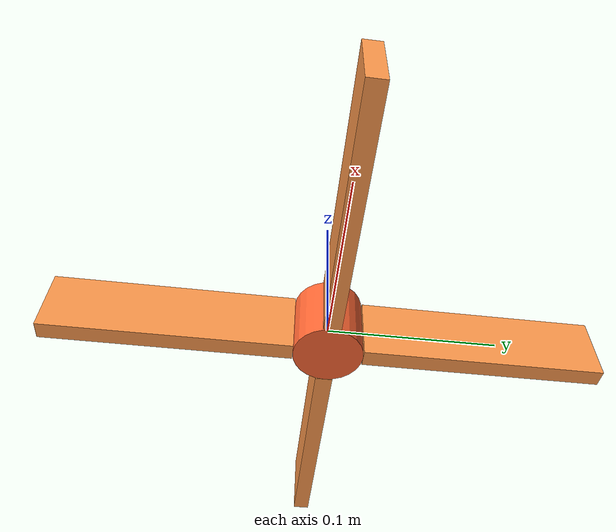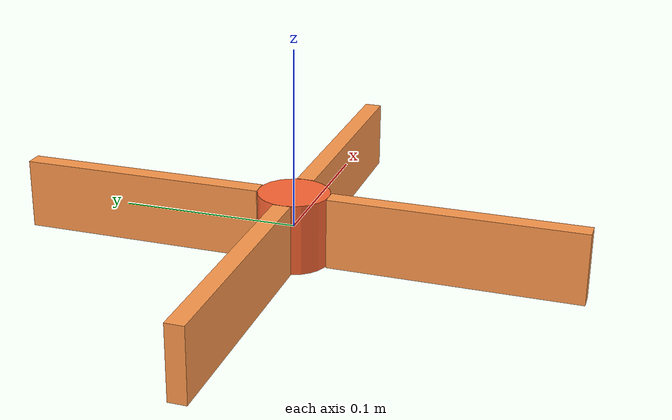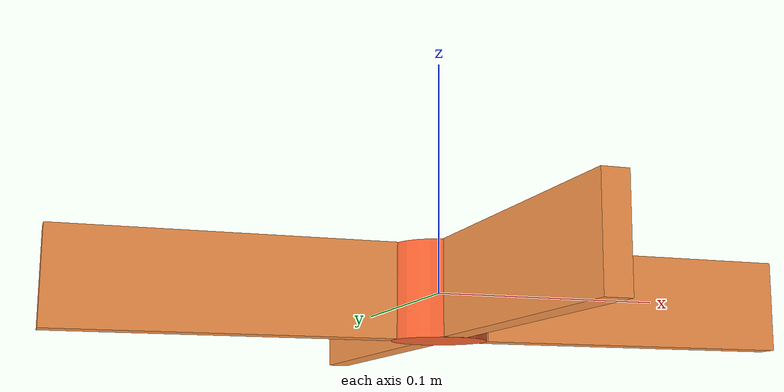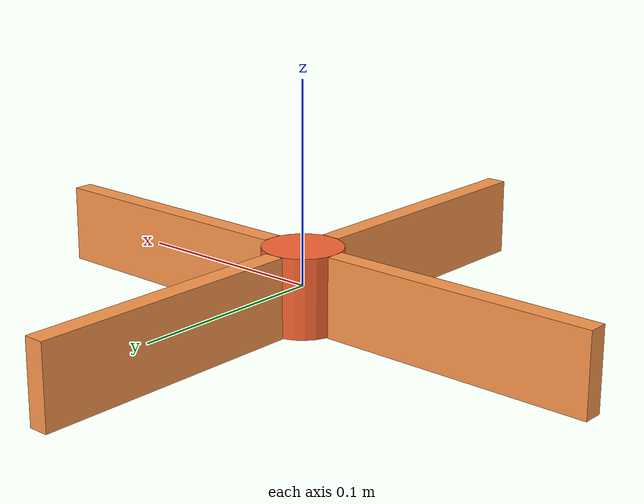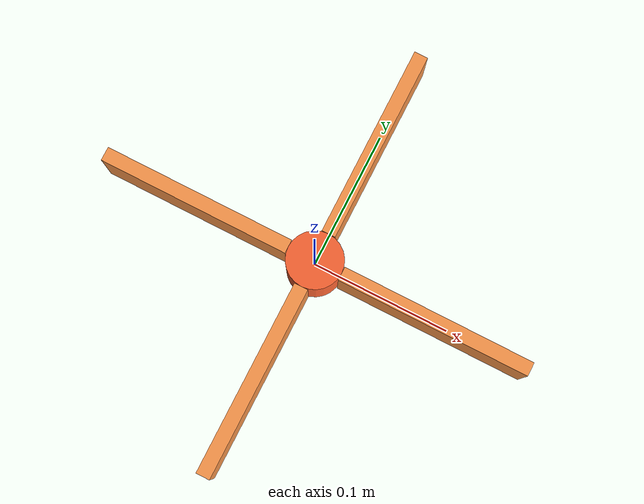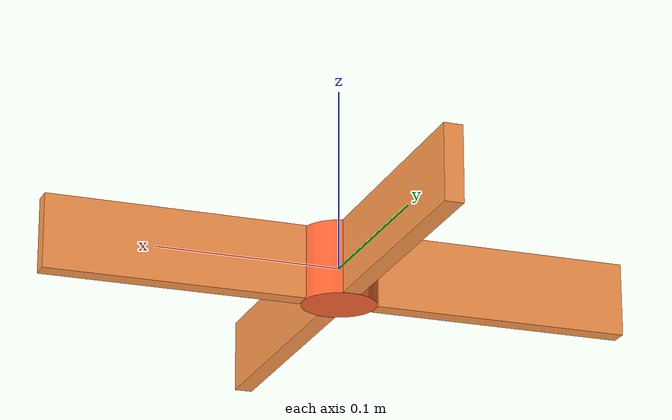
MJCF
<mujoco model="Starfish3D_PlanarSwimmer">

    <compiler angle="degree" inertiafromgeom="true"/>
    <option timestep="0.01" gravity="0 0 0" integrator="RK4"/>

    <default>
        <joint damping="0.2" stiffness="0" armature="0.02"/>
        <motor ctrlrange="-1 1" ctrllimited="true"/>
        <geom solref="0.002 1" solimp="0.9 0.95 0.001"/>
    </default>

    <asset>
        <material name="center_mat" rgba="1.0 0.4 0.2 1"/>
        <material name="leg_mat" rgba="1.0 0.6 0.3 1"/>
    </asset>

    <worldbody>
        <body name="center" pos="0 0 0">
            <freejoint name="root_joint"/>

            <!-- Center body: cylinder matching leg height -->
            <!-- size="radius half_height", half_height=0.02 matches leg Z -->
            <!-- density=8000, V=π×0.02²×0.04≈5.03e-5 m³ → mass≈0.40 kg -->
            <geom name="center_geom" type="cylinder"
                  size="0.02 0.02"
                  pos="0 0 0"
                  material="center_mat"
                  density="8000"/>

            <!-- Leg 0: +Y direction (vertical paddle blade) -->
            <!-- Thin X, long Y, and tall Z increase frontal area. -->
            <!-- density=5000, volume=0.01×0.14×0.04=5.6e-5 m³ → mass≈0.28 kg -->
            <body name="leg_0" pos="0 0.02 0">
                <joint name="leg_0_yaw" type="hinge" axis="0 0 1" limited="true" range="-50 50"/>

                <geom name="leg_0_geom" type="box"
                      size="0.005 0.07 0.02"
                      pos="0 0.07 0"
                      material="leg_mat"
                      density="5000"/>
            </body>

            <!-- Leg 1: +X direction (vertical paddle blade) -->
            <body name="leg_1" pos="0.02 0 0">
                <joint name="leg_1_yaw" type="hinge" axis="0 0 1" limited="true" range="-50 50"/>

                <geom name="leg_1_geom" type="box"
                      size="0.07 0.005 0.02"
                      pos="0.07 0 0"
                      material="leg_mat"
                      density="5000"/>
            </body>

            <!-- Leg 2: -Y direction (vertical paddle blade) -->
            <body name="leg_2" pos="0 -0.02 0">
                <joint name="leg_2_yaw" type="hinge" axis="0 0 1" limited="true" range="-50 50"/>

                <geom name="leg_2_geom" type="box"
                      size="0.005 0.07 0.02"
                      pos="0 -0.07 0"
                      material="leg_mat"
                      density="5000"/>
            </body>

            <!-- Leg 3: -X direction (vertical paddle blade) -->
            <body name="leg_3" pos="-0.02 0 0">
                <joint name="leg_3_yaw" type="hinge" axis="0 0 1" limited="true" range="-50 50"/>

                <geom name="leg_3_geom" type="box"
                      size="0.07 0.005 0.02"
                      pos="-0.07 0 0"
                      material="leg_mat"
                      density="5000"/>
            </body>
        </body>

        <light directional="true" diffuse="0.9 0.9 0.9" pos="0 0 3" dir="0 0 -1"/>
    </worldbody>

    <actuator>
        <!-- Yaw position controllers (planar swimming, no pitch) -->
        <!-- Matched to eel parameters: kp=2.0, kv=0.2, forcerange=±1.0 -->
        <position name="pos_leg_0_yaw" joint="leg_0_yaw" kp="2.0" kv="0.2" ctrlrange="-0.873 0.873" forcerange="-1.0 1.0"/>
        <position name="pos_leg_1_yaw" joint="leg_1_yaw" kp="2.0" kv="0.2" ctrlrange="-0.873 0.873" forcerange="-1.0 1.0"/>
        <position name="pos_leg_2_yaw" joint="leg_2_yaw" kp="2.0" kv="0.2" ctrlrange="-0.873 0.873" forcerange="-1.0 1.0"/>
        <position name="pos_leg_3_yaw" joint="leg_3_yaw" kp="2.0" kv="0.2" ctrlrange="-0.873 0.873" forcerange="-1.0 1.0"/>
    </actuator>
</mujoco>
